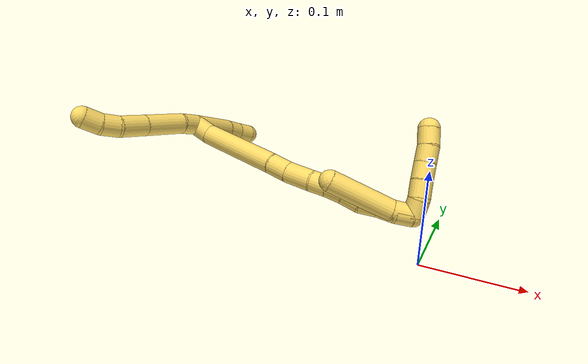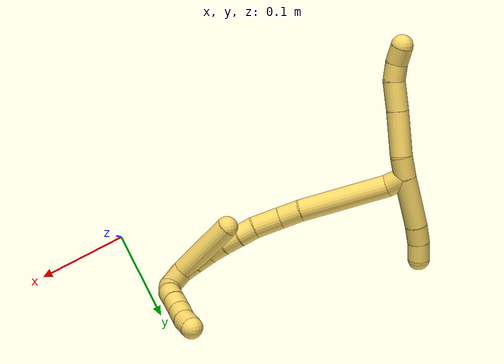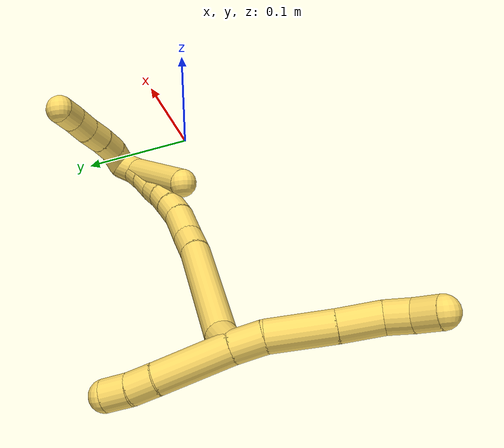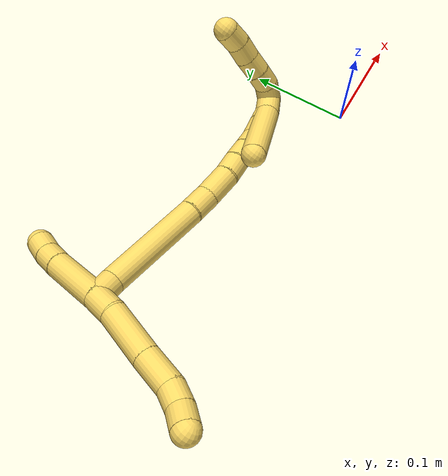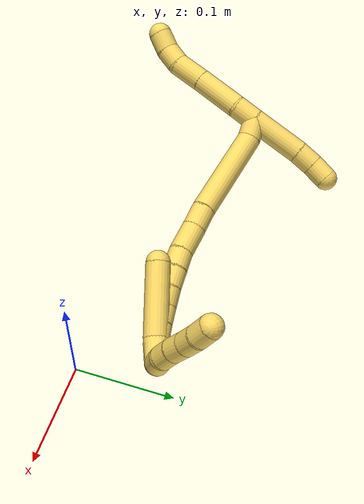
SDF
<sdf version="1.7">
 <world name="default">
  <model name="5">
   <static>0</static>
   <link name="5">
    <collision name="collision-cylinder-e_1_2_8">
     <pose>-0.012209 0.00033 -0.002598 -3.01516 -1.35946 2.98527</pose>
     <geometry><cylinder><radius>0.0125</radius><length>0.024974</length></cylinder></geometry>
     <surface>
      <friction><ode><mu>1.16</mu><mu2>1.16</mu2><slip1>0</slip1><slip2>0</slip2></ode></friction>
      <contact><ode><kp>1e+06</kp><kd>1</kd><max_vel>0</max_vel><min_depth>0.001</min_depth></ode></contact>
     </surface>
    </collision>
    <visual name="visual-cylinder-e_1_2_8">
     <pose>-0.012209 0.00033 -0.002598 -3.01516 -1.35946 2.98527</pose>
     <geometry><cylinder><radius>0.0125</radius><length>0.024974</length></cylinder></geometry>
     <material><ambient>1 0.858824 0.4 1</ambient></material>
    </visual>
    <collision name="collision-cylinder-e_2_8_9">
     <pose>-0.049559 0.002619 -0.006186 -2.03845 -1.48374 1.95918</pose>
     <geometry><cylinder><radius>0.0125</radius><length>0.050472</length></cylinder></geometry>
     <surface>
      <friction><ode><mu>1.16</mu><mu2>1.16</mu2><slip1>0</slip1><slip2>0</slip2></ode></friction>
      <contact><ode><kp>1e+06</kp><kd>1</kd><max_vel>0</max_vel><min_depth>0.001</min_depth></ode></contact>
     </surface>
    </collision>
    <visual name="visual-cylinder-e_2_8_9">
     <pose>-0.049559 0.002619 -0.006186 -2.03845 -1.48374 1.95918</pose>
     <geometry><cylinder><radius>0.0125</radius><length>0.050472</length></cylinder></geometry>
     <material><ambient>1 0.858824 0.4 1</ambient></material>
    </visual>
    <collision name="collision-cylinder-e_3_9_10">
     <pose>-0.091208 0.006046 -0.008442 -2.28245 -1.45384 2.19032</pose>
     <geometry><cylinder><radius>0.0125</radius><length>0.033244</length></cylinder></geometry>
     <surface>
      <friction><ode><mu>1.16</mu><mu2>1.16</mu2><slip1>0</slip1><slip2>0</slip2></ode></friction>
      <contact><ode><kp>1e+06</kp><kd>1</kd><max_vel>0</max_vel><min_depth>0.001</min_depth></ode></contact>
     </surface>
    </collision>
    <visual name="visual-cylinder-e_3_9_10">
     <pose>-0.091208 0.006046 -0.008442 -2.28245 -1.45384 2.19032</pose>
     <geometry><cylinder><radius>0.0125</radius><length>0.033244</length></cylinder></geometry>
     <material><ambient>1 0.858824 0.4 1</ambient></material>
    </visual>
    <collision name="collision-cylinder-e_4_10_11">
     <pose>-0.117881 0.005908 -0.00928 1.31024 -1.40856 -1.15666</pose>
     <geometry><cylinder><radius>0.0125</radius><length>0.020598</length></cylinder></geometry>
     <surface>
      <friction><ode><mu>1.16</mu><mu2>1.16</mu2><slip1>0</slip1><slip2>0</slip2></ode></friction>
      <contact><ode><kp>1e+06</kp><kd>1</kd><max_vel>0</max_vel><min_depth>0.001</min_depth></ode></contact>
     </surface>
    </collision>
    <visual name="visual-cylinder-e_4_10_11">
     <pose>-0.117881 0.005908 -0.00928 1.31024 -1.40856 -1.15666</pose>
     <geometry><cylinder><radius>0.0125</radius><length>0.020598</length></cylinder></geometry>
     <material><ambient>1 0.858824 0.4 1</ambient></material>
    </visual>
    <collision name="collision-cylinder-e_5_11_6">
     <pose>-0.137516 0.000113 -0.00883 1.5656 -1.15447 -1.14972</pose>
     <geometry><cylinder><radius>0.0125</radius><length>0.020711</length></cylinder></geometry>
     <surface>
      <friction><ode><mu>1.16</mu><mu2>1.16</mu2><slip1>0</slip1><slip2>0</slip2></ode></friction>
      <contact><ode><kp>1e+06</kp><kd>1</kd><max_vel>0</max_vel><min_depth>0.001</min_depth></ode></contact>
     </surface>
    </collision>
    <visual name="visual-cylinder-e_5_11_6">
     <pose>-0.137516 0.000113 -0.00883 1.5656 -1.15447 -1.14972</pose>
     <geometry><cylinder><radius>0.0125</radius><length>0.020711</length></cylinder></geometry>
     <material><ambient>1 0.858824 0.4 1</ambient></material>
    </visual>
    <collision name="collision-cylinder-e_1_2_12">
     <pose>0.028085 -0.000543 0.00813 0.066688 1.28842 0.050098</pose>
     <geometry><cylinder><radius>0.0125</radius><length>0.058486</length></cylinder></geometry>
     <surface>
      <friction><ode><mu>1.16</mu><mu2>1.16</mu2><slip1>0</slip1><slip2>0</slip2></ode></friction>
      <contact><ode><kp>1e+06</kp><kd>1</kd><max_vel>0</max_vel><min_depth>0.001</min_depth></ode></contact>
     </surface>
    </collision>
    <visual name="visual-cylinder-e_1_2_12">
     <pose>0.028085 -0.000543 0.00813 0.066688 1.28842 0.050098</pose>
     <geometry><cylinder><radius>0.0125</radius><length>0.058486</length></cylinder></geometry>
     <material><ambient>1 0.858824 0.4 1</ambient></material>
    </visual>
    <collision name="collision-cylinder-e_2_12_13">
     <pose>0.066275 -0.000352 0.018997 -0.261906 1.29739 -0.199047</pose>
     <geometry><cylinder><radius>0.0125</radius><length>0.02099</length></cylinder></geometry>
     <surface>
      <friction><ode><mu>1.16</mu><mu2>1.16</mu2><slip1>0</slip1><slip2>0</slip2></ode></friction>
      <contact><ode><kp>1e+06</kp><kd>1</kd><max_vel>0</max_vel><min_depth>0.001</min_depth></ode></contact>
     </surface>
    </collision>
    <visual name="visual-cylinder-e_2_12_13">
     <pose>0.066275 -0.000352 0.018997 -0.261906 1.29739 -0.199047</pose>
     <geometry><cylinder><radius>0.0125</radius><length>0.02099</length></cylinder></geometry>
     <material><ambient>1 0.858824 0.4 1</ambient></material>
    </visual>
    <collision name="collision-cylinder-e_3_13_5">
     <pose>0.086463 0.001657 0.023157 -0.730876 1.38353 -0.613832</pose>
     <geometry><cylinder><radius>0.0125</radius><length>0.020524</length></cylinder></geometry>
     <surface>
      <friction><ode><mu>1.16</mu><mu2>1.16</mu2><slip1>0</slip1><slip2>0</slip2></ode></friction>
      <contact><ode><kp>1e+06</kp><kd>1</kd><max_vel>0</max_vel><min_depth>0.001</min_depth></ode></contact>
     </surface>
    </collision>
    <visual name="visual-cylinder-e_3_13_5">
     <pose>0.086463 0.001657 0.023157 -0.730876 1.38353 -0.613832</pose>
     <geometry><cylinder><radius>0.0125</radius><length>0.020524</length></cylinder></geometry>
     <material><ambient>1 0.858824 0.4 1</ambient></material>
    </visual>
    <collision name="collision-cylinder-e_1_2_14">
     <pose>0.005206 0.008768 -0.004851 -2.07614 0.479161 -0.785568</pose>
     <geometry><cylinder><radius>0.0125</radius><length>0.022584</length></cylinder></geometry>
     <surface>
      <friction><ode><mu>1.16</mu><mu2>1.16</mu2><slip1>0</slip1><slip2>0</slip2></ode></friction>
      <contact><ode><kp>1e+06</kp><kd>1</kd><max_vel>0</max_vel><min_depth>0.001</min_depth></ode></contact>
     </surface>
    </collision>
    <visual name="visual-cylinder-e_1_2_14">
     <pose>0.005206 0.008768 -0.004851 -2.07614 0.479161 -0.785568</pose>
     <geometry><cylinder><radius>0.0125</radius><length>0.022584</length></cylinder></geometry>
     <material><ambient>1 0.858824 0.4 1</ambient></material>
    </visual>
    <collision name="collision-cylinder-e_2_14_15">
     <pose>0.024498 0.051206 -0.04473 -2.37596 0.282178 -0.678184</pose>
     <geometry><cylinder><radius>0.0125</radius><length>0.101175</length></cylinder></geometry>
     <surface>
      <friction><ode><mu>1.16</mu><mu2>1.16</mu2><slip1>0</slip1><slip2>0</slip2></ode></friction>
      <contact><ode><kp>1e+06</kp><kd>1</kd><max_vel>0</max_vel><min_depth>0.001</min_depth></ode></contact>
     </surface>
    </collision>
    <visual name="visual-cylinder-e_2_14_15">
     <pose>0.024498 0.051206 -0.04473 -2.37596 0.282178 -0.678184</pose>
     <geometry><cylinder><radius>0.0125</radius><length>0.101175</length></cylinder></geometry>
     <material><ambient>1 0.858824 0.4 1</ambient></material>
    </visual>
    <collision name="collision-cylinder-e_3_15_16">
     <pose>0.042943 0.093366 -0.087382 -2.30249 0.364907 -0.784448</pose>
     <geometry><cylinder><radius>0.0125</radius><length>0.024428</length></cylinder></geometry>
     <surface>
      <friction><ode><mu>1.16</mu><mu2>1.16</mu2><slip1>0</slip1><slip2>0</slip2></ode></friction>
      <contact><ode><kp>1e+06</kp><kd>1</kd><max_vel>0</max_vel><min_depth>0.001</min_depth></ode></contact>
     </surface>
    </collision>
    <visual name="visual-cylinder-e_3_15_16">
     <pose>0.042943 0.093366 -0.087382 -2.30249 0.364907 -0.784448</pose>
     <geometry><cylinder><radius>0.0125</radius><length>0.024428</length></cylinder></geometry>
     <material><ambient>1 0.858824 0.4 1</ambient></material>
    </visual>
    <collision name="collision-cylinder-e_4_16_17">
     <pose>0.052709 0.111455 -0.106134 -2.42985 0.35258 -0.893833</pose>
     <geometry><cylinder><radius>0.0125</radius><length>0.03132</length></cylinder></geometry>
     <surface>
      <friction><ode><mu>1.16</mu><mu2>1.16</mu2><slip1>0</slip1><slip2>0</slip2></ode></friction>
      <contact><ode><kp>1e+06</kp><kd>1</kd><max_vel>0</max_vel><min_depth>0.001</min_depth></ode></contact>
     </surface>
    </collision>
    <visual name="visual-cylinder-e_4_16_17">
     <pose>0.052709 0.111455 -0.106134 -2.42985 0.35258 -0.893833</pose>
     <geometry><cylinder><radius>0.0125</radius><length>0.03132</length></cylinder></geometry>
     <material><ambient>1 0.858824 0.4 1</ambient></material>
    </visual>
    <collision name="collision-cylinder-e_5_17_18">
     <pose>0.062964 0.126951 -0.123743 -2.4033 0.505315 -1.17692</pose>
     <geometry><cylinder><radius>0.0125</radius><length>0.020027</length></cylinder></geometry>
     <surface>
      <friction><ode><mu>1.16</mu><mu2>1.16</mu2><slip1>0</slip1><slip2>0</slip2></ode></friction>
      <contact><ode><kp>1e+06</kp><kd>1</kd><max_vel>0</max_vel><min_depth>0.001</min_depth></ode></contact>
     </surface>
    </collision>
    <visual name="visual-cylinder-e_5_17_18">
     <pose>0.062964 0.126951 -0.123743 -2.4033 0.505315 -1.17692</pose>
     <geometry><cylinder><radius>0.0125</radius><length>0.020027</length></cylinder></geometry>
     <material><ambient>1 0.858824 0.4 1</ambient></material>
    </visual>
    <collision name="collision-cylinder-e_6_18_19">
     <pose>0.072625 0.139446 -0.136164 -2.30382 0.496806 -1.03565</pose>
     <geometry><cylinder><radius>0.0125</radius><length>0.020199</length></cylinder></geometry>
     <surface>
      <friction><ode><mu>1.16</mu><mu2>1.16</mu2><slip1>0</slip1><slip2>0</slip2></ode></friction>
      <contact><ode><kp>1e+06</kp><kd>1</kd><max_vel>0</max_vel><min_depth>0.001</min_depth></ode></contact>
     </surface>
    </collision>
    <visual name="visual-cylinder-e_6_18_19">
     <pose>0.072625 0.139446 -0.136164 -2.30382 0.496806 -1.03565</pose>
     <geometry><cylinder><radius>0.0125</radius><length>0.020199</length></cylinder></geometry>
     <material><ambient>1 0.858824 0.4 1</ambient></material>
    </visual>
    <collision name="collision-cylinder-e_7_19_20">
     <pose>0.082782 0.153123 -0.146865 -2.16273 0.559563 -0.989339</pose>
     <geometry><cylinder><radius>0.0125</radius><length>0.020131</length></cylinder></geometry>
     <surface>
      <friction><ode><mu>1.16</mu><mu2>1.16</mu2><slip1>0</slip1><slip2>0</slip2></ode></friction>
      <contact><ode><kp>1e+06</kp><kd>1</kd><max_vel>0</max_vel><min_depth>0.001</min_depth></ode></contact>
     </surface>
    </collision>
    <visual name="visual-cylinder-e_7_19_20">
     <pose>0.082782 0.153123 -0.146865 -2.16273 0.559563 -0.989339</pose>
     <geometry><cylinder><radius>0.0125</radius><length>0.020131</length></cylinder></geometry>
     <material><ambient>1 0.858824 0.4 1</ambient></material>
    </visual>
    <collision name="collision-cylinder-e_8_20_21">
     <pose>0.093705 0.165149 -0.158378 -2.50946 0.587986 -1.49378</pose>
     <geometry><cylinder><radius>0.0125</radius><length>0.020121</length></cylinder></geometry>
     <surface>
      <friction><ode><mu>1.16</mu><mu2>1.16</mu2><slip1>0</slip1><slip2>0</slip2></ode></friction>
      <contact><ode><kp>1e+06</kp><kd>1</kd><max_vel>0</max_vel><min_depth>0.001</min_depth></ode></contact>
     </surface>
    </collision>
    <visual name="visual-cylinder-e_8_20_21">
     <pose>0.093705 0.165149 -0.158378 -2.50946 0.587986 -1.49378</pose>
     <geometry><cylinder><radius>0.0125</radius><length>0.020121</length></cylinder></geometry>
     <material><ambient>1 0.858824 0.4 1</ambient></material>
    </visual>
    <collision name="collision-cylinder-e_9_21_22">
     <pose>0.105148 0.175912 -0.170781 -2.3416 0.625918 -1.30654</pose>
     <geometry><cylinder><radius>0.0125</radius><length>0.020013</length></cylinder></geometry>
     <surface>
      <friction><ode><mu>1.16</mu><mu2>1.16</mu2><slip1>0</slip1><slip2>0</slip2></ode></friction>
      <contact><ode><kp>1e+06</kp><kd>1</kd><max_vel>0</max_vel><min_depth>0.001</min_depth></ode></contact>
     </surface>
    </collision>
    <visual name="visual-cylinder-e_9_21_22">
     <pose>0.105148 0.175912 -0.170781 -2.3416 0.625918 -1.30654</pose>
     <geometry><cylinder><radius>0.0125</radius><length>0.020013</length></cylinder></geometry>
     <material><ambient>1 0.858824 0.4 1</ambient></material>
    </visual>
    <collision name="collision-cylinder-e_10_22_1">
     <pose>0.118716 0.185979 -0.181183 -2.41194 0.879673 -1.77805</pose>
     <geometry><cylinder><radius>0.0125</radius><length>0.020002</length></cylinder></geometry>
     <surface>
      <friction><ode><mu>1.16</mu><mu2>1.16</mu2><slip1>0</slip1><slip2>0</slip2></ode></friction>
      <contact><ode><kp>1e+06</kp><kd>1</kd><max_vel>0</max_vel><min_depth>0.001</min_depth></ode></contact>
     </surface>
    </collision>
    <visual name="visual-cylinder-e_10_22_1">
     <pose>0.118716 0.185979 -0.181183 -2.41194 0.879673 -1.77805</pose>
     <geometry><cylinder><radius>0.0125</radius><length>0.020002</length></cylinder></geometry>
     <material><ambient>1 0.858824 0.4 1</ambient></material>
    </visual>
    <collision name="collision-cylinder-e_1_1_23">
     <pose>0.127972 0.182524 -0.192119 2.24716 0.155607 0.322272</pose>
     <geometry><cylinder><radius>0.0125</radius><length>0.02</length></cylinder></geometry>
     <surface>
      <friction><ode><mu>1.16</mu><mu2>1.16</mu2><slip1>0</slip1><slip2>0</slip2></ode></friction>
      <contact><ode><kp>1e+06</kp><kd>1</kd><max_vel>0</max_vel><min_depth>0.001</min_depth></ode></contact>
     </surface>
    </collision>
    <visual name="visual-cylinder-e_1_1_23">
     <pose>0.127972 0.182524 -0.192119 2.24716 0.155607 0.322272</pose>
     <geometry><cylinder><radius>0.0125</radius><length>0.02</length></cylinder></geometry>
     <material><ambient>1 0.858824 0.4 1</ambient></material>
    </visual>
    <collision name="collision-cylinder-e_2_23_24">
     <pose>0.132158 0.165804 -0.201734 1.93451 0.266779 0.384504</pose>
     <geometry><cylinder><radius>0.0125</radius><length>0.02</length></cylinder></geometry>
     <surface>
      <friction><ode><mu>1.16</mu><mu2>1.16</mu2><slip1>0</slip1><slip2>0</slip2></ode></friction>
      <contact><ode><kp>1e+06</kp><kd>1</kd><max_vel>0</max_vel><min_depth>0.001</min_depth></ode></contact>
     </surface>
    </collision>
    <visual name="visual-cylinder-e_2_23_24">
     <pose>0.132158 0.165804 -0.201734 1.93451 0.266779 0.384504</pose>
     <geometry><cylinder><radius>0.0125</radius><length>0.02</length></cylinder></geometry>
     <material><ambient>1 0.858824 0.4 1</ambient></material>
    </visual>
    <collision name="collision-cylinder-e_3_24_25">
     <pose>0.138209 0.147953 -0.208369 1.9186 0.34852 0.491993</pose>
     <geometry><cylinder><radius>0.0125</radius><length>0.02</length></cylinder></geometry>
     <surface>
      <friction><ode><mu>1.16</mu><mu2>1.16</mu2><slip1>0</slip1><slip2>0</slip2></ode></friction>
      <contact><ode><kp>1e+06</kp><kd>1</kd><max_vel>0</max_vel><min_depth>0.001</min_depth></ode></contact>
     </surface>
    </collision>
    <visual name="visual-cylinder-e_3_24_25">
     <pose>0.138209 0.147953 -0.208369 1.9186 0.34852 0.491993</pose>
     <geometry><cylinder><radius>0.0125</radius><length>0.02</length></cylinder></geometry>
     <material><ambient>1 0.858824 0.4 1</ambient></material>
    </visual>
    <collision name="collision-cylinder-e_4_25_26">
     <pose>0.144598 0.130314 -0.21527 1.96842 0.301915 0.449997</pose>
     <geometry><cylinder><radius>0.0125</radius><length>0.02</length></cylinder></geometry>
     <surface>
      <friction><ode><mu>1.16</mu><mu2>1.16</mu2><slip1>0</slip1><slip2>0</slip2></ode></friction>
      <contact><ode><kp>1e+06</kp><kd>1</kd><max_vel>0</max_vel><min_depth>0.001</min_depth></ode></contact>
     </surface>
    </collision>
    <visual name="visual-cylinder-e_4_25_26">
     <pose>0.144598 0.130314 -0.21527 1.96842 0.301915 0.449997</pose>
     <geometry><cylinder><radius>0.0125</radius><length>0.02</length></cylinder></geometry>
     <material><ambient>1 0.858824 0.4 1</ambient></material>
    </visual>
    <collision name="collision-cylinder-e_5_26_4">
     <pose>0.149875 0.112057 -0.221271 1.80981 0.232453 0.295076</pose>
     <geometry><cylinder><radius>0.0125</radius><length>0.02</length></cylinder></geometry>
     <surface>
      <friction><ode><mu>1.16</mu><mu2>1.16</mu2><slip1>0</slip1><slip2>0</slip2></ode></friction>
      <contact><ode><kp>1e+06</kp><kd>1</kd><max_vel>0</max_vel><min_depth>0.001</min_depth></ode></contact>
     </surface>
    </collision>
    <visual name="visual-cylinder-e_5_26_4">
     <pose>0.149875 0.112057 -0.221271 1.80981 0.232453 0.295076</pose>
     <geometry><cylinder><radius>0.0125</radius><length>0.02</length></cylinder></geometry>
     <material><ambient>1 0.858824 0.4 1</ambient></material>
    </visual>
    <collision name="collision-cylinder-e_1_1_27">
     <pose>0.116914 0.184455 -0.180297 0.797234 -0.867054 -0.38508</pose>
     <geometry><cylinder><radius>0.0125</radius><length>0.024942</length></cylinder></geometry>
     <surface>
      <friction><ode><mu>1.16</mu><mu2>1.16</mu2><slip1>0</slip1><slip2>0</slip2></ode></friction>
      <contact><ode><kp>1e+06</kp><kd>1</kd><max_vel>0</max_vel><min_depth>0.001</min_depth></ode></contact>
     </surface>
    </collision>
    <visual name="visual-cylinder-e_1_1_27">
     <pose>0.116914 0.184455 -0.180297 0.797234 -0.867054 -0.38508</pose>
     <geometry><cylinder><radius>0.0125</radius><length>0.024942</length></cylinder></geometry>
     <material><ambient>1 0.858824 0.4 1</ambient></material>
    </visual>
    <collision name="collision-cylinder-e_2_27_3">
     <pose>0.081232 0.155191 -0.161561 1.06217 -0.771815 -0.468512</pose>
     <geometry><cylinder><radius>0.0125</radius><length>0.075058</length></cylinder></geometry>
     <surface>
      <friction><ode><mu>1.16</mu><mu2>1.16</mu2><slip1>0</slip1><slip2>0</slip2></ode></friction>
      <contact><ode><kp>1e+06</kp><kd>1</kd><max_vel>0</max_vel><min_depth>0.001</min_depth></ode></contact>
     </surface>
    </collision>
    <visual name="visual-cylinder-e_2_27_3">
     <pose>0.081232 0.155191 -0.161561 1.06217 -0.771815 -0.468512</pose>
     <geometry><cylinder><radius>0.0125</radius><length>0.075058</length></cylinder></geometry>
     <material><ambient>1 0.858824 0.4 1</ambient></material>
    </visual>
    <collision name="collision-sphere-3">
     <pose>0.055057 0.131701 -0.148464 0 -0 0</pose>
     <geometry><sphere><radius>0.0125</radius></sphere></geometry>
     <surface>
      <friction><ode><mu>1.16</mu><mu2>1.16</mu2><slip1>0</slip1><slip2>0</slip2></ode></friction>
      <contact><ode><kp>1e+06</kp><kd>1</kd><max_vel>0</max_vel><min_depth>0.001</min_depth></ode></contact>
     </surface>
    </collision>
    <visual name="visual-sphere-3">
     <pose>0.055057 0.131701 -0.148464 0 -0 0</pose>
     <geometry><sphere><radius>0.0125</radius></sphere></geometry>
     <material><ambient>1 0.858824 0.4 1</ambient></material>
    </visual>
    <collision name="collision-sphere-27">
     <pose>0.107406 0.178682 -0.174658 0 -0 0</pose>
     <geometry><sphere><radius>0.0125</radius></sphere></geometry>
     <surface>
      <friction><ode><mu>1.16</mu><mu2>1.16</mu2><slip1>0</slip1><slip2>0</slip2></ode></friction>
      <contact><ode><kp>1e+06</kp><kd>1</kd><max_vel>0</max_vel><min_depth>0.001</min_depth></ode></contact>
     </surface>
    </collision>
    <visual name="visual-sphere-27">
     <pose>0.107406 0.178682 -0.174658 0 -0 0</pose>
     <geometry><sphere><radius>0.0125</radius></sphere></geometry>
     <material><ambient>1 0.858824 0.4 1</ambient></material>
    </visual>
    <collision name="collision-sphere-4">
     <pose>0.152179 0.102603 -0.223575 0 -0 0</pose>
     <geometry><sphere><radius>0.0125</radius></sphere></geometry>
     <surface>
      <friction><ode><mu>1.16</mu><mu2>1.16</mu2><slip1>0</slip1><slip2>0</slip2></ode></friction>
      <contact><ode><kp>1e+06</kp><kd>1</kd><max_vel>0</max_vel><min_depth>0.001</min_depth></ode></contact>
     </surface>
    </collision>
    <visual name="visual-sphere-4">
     <pose>0.152179 0.102603 -0.223575 0 -0 0</pose>
     <geometry><sphere><radius>0.0125</radius></sphere></geometry>
     <material><ambient>1 0.858824 0.4 1</ambient></material>
    </visual>
    <collision name="collision-sphere-26">
     <pose>0.147571 0.121511 -0.218967 0 -0 0</pose>
     <geometry><sphere><radius>0.0125</radius></sphere></geometry>
     <surface>
      <friction><ode><mu>1.16</mu><mu2>1.16</mu2><slip1>0</slip1><slip2>0</slip2></ode></friction>
      <contact><ode><kp>1e+06</kp><kd>1</kd><max_vel>0</max_vel><min_depth>0.001</min_depth></ode></contact>
     </surface>
    </collision>
    <visual name="visual-sphere-26">
     <pose>0.147571 0.121511 -0.218967 0 -0 0</pose>
     <geometry><sphere><radius>0.0125</radius></sphere></geometry>
     <material><ambient>1 0.858824 0.4 1</ambient></material>
    </visual>
    <collision name="collision-sphere-25">
     <pose>0.141624 0.139117 -0.211573 0 -0 0</pose>
     <geometry><sphere><radius>0.0125</radius></sphere></geometry>
     <surface>
      <friction><ode><mu>1.16</mu><mu2>1.16</mu2><slip1>0</slip1><slip2>0</slip2></ode></friction>
      <contact><ode><kp>1e+06</kp><kd>1</kd><max_vel>0</max_vel><min_depth>0.001</min_depth></ode></contact>
     </surface>
    </collision>
    <visual name="visual-sphere-25">
     <pose>0.141624 0.139117 -0.211573 0 -0 0</pose>
     <geometry><sphere><radius>0.0125</radius></sphere></geometry>
     <material><ambient>1 0.858824 0.4 1</ambient></material>
    </visual>
    <collision name="collision-sphere-24">
     <pose>0.134794 0.156789 -0.205166 0 -0 0</pose>
     <geometry><sphere><radius>0.0125</radius></sphere></geometry>
     <surface>
      <friction><ode><mu>1.16</mu><mu2>1.16</mu2><slip1>0</slip1><slip2>0</slip2></ode></friction>
      <contact><ode><kp>1e+06</kp><kd>1</kd><max_vel>0</max_vel><min_depth>0.001</min_depth></ode></contact>
     </surface>
    </collision>
    <visual name="visual-sphere-24">
     <pose>0.134794 0.156789 -0.205166 0 -0 0</pose>
     <geometry><sphere><radius>0.0125</radius></sphere></geometry>
     <material><ambient>1 0.858824 0.4 1</ambient></material>
    </visual>
    <collision name="collision-sphere-23">
     <pose>0.129522 0.17482 -0.198303 0 -0 0</pose>
     <geometry><sphere><radius>0.0125</radius></sphere></geometry>
     <surface>
      <friction><ode><mu>1.16</mu><mu2>1.16</mu2><slip1>0</slip1><slip2>0</slip2></ode></friction>
      <contact><ode><kp>1e+06</kp><kd>1</kd><max_vel>0</max_vel><min_depth>0.001</min_depth></ode></contact>
     </surface>
    </collision>
    <visual name="visual-sphere-23">
     <pose>0.129522 0.17482 -0.198303 0 -0 0</pose>
     <geometry><sphere><radius>0.0125</radius></sphere></geometry>
     <material><ambient>1 0.858824 0.4 1</ambient></material>
    </visual>
    <collision name="collision-sphere-1">
     <pose>0.126422 0.190228 -0.185935 0 -0 0</pose>
     <geometry><sphere><radius>0.0125</radius></sphere></geometry>
     <surface>
      <friction><ode><mu>1.16</mu><mu2>1.16</mu2><slip1>0</slip1><slip2>0</slip2></ode></friction>
      <contact><ode><kp>1e+06</kp><kd>1</kd><max_vel>0</max_vel><min_depth>0.001</min_depth></ode></contact>
     </surface>
    </collision>
    <visual name="visual-sphere-1">
     <pose>0.126422 0.190228 -0.185935 0 -0 0</pose>
     <geometry><sphere><radius>0.0125</radius></sphere></geometry>
     <material><ambient>1 0.858824 0.4 1</ambient></material>
    </visual>
    <collision name="collision-sphere-22">
     <pose>0.11101 0.181729 -0.176431 0 -0 0</pose>
     <geometry><sphere><radius>0.0125</radius></sphere></geometry>
     <surface>
      <friction><ode><mu>1.16</mu><mu2>1.16</mu2><slip1>0</slip1><slip2>0</slip2></ode></friction>
      <contact><ode><kp>1e+06</kp><kd>1</kd><max_vel>0</max_vel><min_depth>0.001</min_depth></ode></contact>
     </surface>
    </collision>
    <visual name="visual-sphere-22">
     <pose>0.11101 0.181729 -0.176431 0 -0 0</pose>
     <geometry><sphere><radius>0.0125</radius></sphere></geometry>
     <material><ambient>1 0.858824 0.4 1</ambient></material>
    </visual>
    <collision name="collision-sphere-21">
     <pose>0.099286 0.170095 -0.165131 0 -0 0</pose>
     <geometry><sphere><radius>0.0125</radius></sphere></geometry>
     <surface>
      <friction><ode><mu>1.16</mu><mu2>1.16</mu2><slip1>0</slip1><slip2>0</slip2></ode></friction>
      <contact><ode><kp>1e+06</kp><kd>1</kd><max_vel>0</max_vel><min_depth>0.001</min_depth></ode></contact>
     </surface>
    </collision>
    <visual name="visual-sphere-21">
     <pose>0.099286 0.170095 -0.165131 0 -0 0</pose>
     <geometry><sphere><radius>0.0125</radius></sphere></geometry>
     <material><ambient>1 0.858824 0.4 1</ambient></material>
    </visual>
    <collision name="collision-sphere-6">
     <pose>-0.146987 -0.004075 -0.008808 0 -0 0</pose>
     <geometry><sphere><radius>0.0125</radius></sphere></geometry>
     <surface>
      <friction><ode><mu>1.16</mu><mu2>1.16</mu2><slip1>0</slip1><slip2>0</slip2></ode></friction>
      <contact><ode><kp>1e+06</kp><kd>1</kd><max_vel>0</max_vel><min_depth>0.001</min_depth></ode></contact>
     </surface>
    </collision>
    <visual name="visual-sphere-6">
     <pose>-0.146987 -0.004075 -0.008808 0 -0 0</pose>
     <geometry><sphere><radius>0.0125</radius></sphere></geometry>
     <material><ambient>1 0.858824 0.4 1</ambient></material>
    </visual>
    <collision name="collision-sphere-11">
     <pose>-0.128044 0.004301 -0.008851 0 -0 0</pose>
     <geometry><sphere><radius>0.0125</radius></sphere></geometry>
     <surface>
      <friction><ode><mu>1.16</mu><mu2>1.16</mu2><slip1>0</slip1><slip2>0</slip2></ode></friction>
      <contact><ode><kp>1e+06</kp><kd>1</kd><max_vel>0</max_vel><min_depth>0.001</min_depth></ode></contact>
     </surface>
    </collision>
    <visual name="visual-sphere-11">
     <pose>-0.128044 0.004301 -0.008851 0 -0 0</pose>
     <geometry><sphere><radius>0.0125</radius></sphere></geometry>
     <material><ambient>1 0.858824 0.4 1</ambient></material>
    </visual>
    <collision name="collision-sphere-10">
     <pose>-0.107717 0.007515 -0.009709 0 -0 0</pose>
     <geometry><sphere><radius>0.0125</radius></sphere></geometry>
     <surface>
      <friction><ode><mu>1.16</mu><mu2>1.16</mu2><slip1>0</slip1><slip2>0</slip2></ode></friction>
      <contact><ode><kp>1e+06</kp><kd>1</kd><max_vel>0</max_vel><min_depth>0.001</min_depth></ode></contact>
     </surface>
    </collision>
    <visual name="visual-sphere-10">
     <pose>-0.107717 0.007515 -0.009709 0 -0 0</pose>
     <geometry><sphere><radius>0.0125</radius></sphere></geometry>
     <material><ambient>1 0.858824 0.4 1</ambient></material>
    </visual>
    <collision name="collision-sphere-9">
     <pose>-0.0747 0.004578 -0.007175 0 -0 0</pose>
     <geometry><sphere><radius>0.0125</radius></sphere></geometry>
     <surface>
      <friction><ode><mu>1.16</mu><mu2>1.16</mu2><slip1>0</slip1><slip2>0</slip2></ode></friction>
      <contact><ode><kp>1e+06</kp><kd>1</kd><max_vel>0</max_vel><min_depth>0.001</min_depth></ode></contact>
     </surface>
    </collision>
    <visual name="visual-sphere-9">
     <pose>-0.0747 0.004578 -0.007175 0 -0 0</pose>
     <geometry><sphere><radius>0.0125</radius></sphere></geometry>
     <material><ambient>1 0.858824 0.4 1</ambient></material>
    </visual>
    <collision name="collision-sphere-2">
     <geometry><sphere><radius>0.0125</radius></sphere></geometry>
     <surface>
      <friction><ode><mu>1.16</mu><mu2>1.16</mu2><slip1>0</slip1><slip2>0</slip2></ode></friction>
      <contact><ode><kp>1e+06</kp><kd>1</kd><max_vel>0</max_vel><min_depth>0.001</min_depth></ode></contact>
     </surface>
    </collision>
    <visual name="visual-sphere-2">
     <geometry><sphere><radius>0.0125</radius></sphere></geometry>
     <material><ambient>1 0.858824 0.4 1</ambient></material>
    </visual>
    <collision name="collision-sphere-19">
     <pose>0.077439 0.146044 -0.142105 0 -0 0</pose>
     <geometry><sphere><radius>0.0125</radius></sphere></geometry>
     <surface>
      <friction><ode><mu>1.16</mu><mu2>1.16</mu2><slip1>0</slip1><slip2>0</slip2></ode></friction>
      <contact><ode><kp>1e+06</kp><kd>1</kd><max_vel>0</max_vel><min_depth>0.001</min_depth></ode></contact>
     </surface>
    </collision>
    <visual name="visual-sphere-19">
     <pose>0.077439 0.146044 -0.142105 0 -0 0</pose>
     <geometry><sphere><radius>0.0125</radius></sphere></geometry>
     <material><ambient>1 0.858824 0.4 1</ambient></material>
    </visual>
    <collision name="collision-sphere-8">
     <pose>-0.024419 0.000661 -0.005197 0 -0 0</pose>
     <geometry><sphere><radius>0.0125</radius></sphere></geometry>
     <surface>
      <friction><ode><mu>1.16</mu><mu2>1.16</mu2><slip1>0</slip1><slip2>0</slip2></ode></friction>
      <contact><ode><kp>1e+06</kp><kd>1</kd><max_vel>0</max_vel><min_depth>0.001</min_depth></ode></contact>
     </surface>
    </collision>
    <visual name="visual-sphere-8">
     <pose>-0.024419 0.000661 -0.005197 0 -0 0</pose>
     <geometry><sphere><radius>0.0125</radius></sphere></geometry>
     <material><ambient>1 0.858824 0.4 1</ambient></material>
    </visual>
    <collision name="collision-sphere-12">
     <pose>0.056169 -0.001086 0.01626 0 -0 0</pose>
     <geometry><sphere><radius>0.0125</radius></sphere></geometry>
     <surface>
      <friction><ode><mu>1.16</mu><mu2>1.16</mu2><slip1>0</slip1><slip2>0</slip2></ode></friction>
      <contact><ode><kp>1e+06</kp><kd>1</kd><max_vel>0</max_vel><min_depth>0.001</min_depth></ode></contact>
     </surface>
    </collision>
    <visual name="visual-sphere-12">
     <pose>0.056169 -0.001086 0.01626 0 -0 0</pose>
     <geometry><sphere><radius>0.0125</radius></sphere></geometry>
     <material><ambient>1 0.858824 0.4 1</ambient></material>
    </visual>
    <collision name="collision-sphere-13">
     <pose>0.07638 0.000381 0.021734 0 -0 0</pose>
     <geometry><sphere><radius>0.0125</radius></sphere></geometry>
     <surface>
      <friction><ode><mu>1.16</mu><mu2>1.16</mu2><slip1>0</slip1><slip2>0</slip2></ode></friction>
      <contact><ode><kp>1e+06</kp><kd>1</kd><max_vel>0</max_vel><min_depth>0.001</min_depth></ode></contact>
     </surface>
    </collision>
    <visual name="visual-sphere-13">
     <pose>0.07638 0.000381 0.021734 0 -0 0</pose>
     <geometry><sphere><radius>0.0125</radius></sphere></geometry>
     <material><ambient>1 0.858824 0.4 1</ambient></material>
    </visual>
    <collision name="collision-sphere-5">
     <pose>0.096545 0.002932 0.024579 0 -0 0</pose>
     <geometry><sphere><radius>0.0125</radius></sphere></geometry>
     <surface>
      <friction><ode><mu>1.16</mu><mu2>1.16</mu2><slip1>0</slip1><slip2>0</slip2></ode></friction>
      <contact><ode><kp>1e+06</kp><kd>1</kd><max_vel>0</max_vel><min_depth>0.001</min_depth></ode></contact>
     </surface>
    </collision>
    <visual name="visual-sphere-5">
     <pose>0.096545 0.002932 0.024579 0 -0 0</pose>
     <geometry><sphere><radius>0.0125</radius></sphere></geometry>
     <material><ambient>1 0.858824 0.4 1</ambient></material>
    </visual>
    <collision name="collision-sphere-14">
     <pose>0.010412 0.017536 -0.009702 0 -0 0</pose>
     <geometry><sphere><radius>0.0125</radius></sphere></geometry>
     <surface>
      <friction><ode><mu>1.16</mu><mu2>1.16</mu2><slip1>0</slip1><slip2>0</slip2></ode></friction>
      <contact><ode><kp>1e+06</kp><kd>1</kd><max_vel>0</max_vel><min_depth>0.001</min_depth></ode></contact>
     </surface>
    </collision>
    <visual name="visual-sphere-14">
     <pose>0.010412 0.017536 -0.009702 0 -0 0</pose>
     <geometry><sphere><radius>0.0125</radius></sphere></geometry>
     <material><ambient>1 0.858824 0.4 1</ambient></material>
    </visual>
    <collision name="collision-sphere-15">
     <pose>0.038584 0.084877 -0.079759 0 -0 0</pose>
     <geometry><sphere><radius>0.0125</radius></sphere></geometry>
     <surface>
      <friction><ode><mu>1.16</mu><mu2>1.16</mu2><slip1>0</slip1><slip2>0</slip2></ode></friction>
      <contact><ode><kp>1e+06</kp><kd>1</kd><max_vel>0</max_vel><min_depth>0.001</min_depth></ode></contact>
     </surface>
    </collision>
    <visual name="visual-sphere-15">
     <pose>0.038584 0.084877 -0.079759 0 -0 0</pose>
     <geometry><sphere><radius>0.0125</radius></sphere></geometry>
     <material><ambient>1 0.858824 0.4 1</ambient></material>
    </visual>
    <collision name="collision-sphere-16">
     <pose>0.047301 0.101855 -0.095005 0 -0 0</pose>
     <geometry><sphere><radius>0.0125</radius></sphere></geometry>
     <surface>
      <friction><ode><mu>1.16</mu><mu2>1.16</mu2><slip1>0</slip1><slip2>0</slip2></ode></friction>
      <contact><ode><kp>1e+06</kp><kd>1</kd><max_vel>0</max_vel><min_depth>0.001</min_depth></ode></contact>
     </surface>
    </collision>
    <visual name="visual-sphere-16">
     <pose>0.047301 0.101855 -0.095005 0 -0 0</pose>
     <geometry><sphere><radius>0.0125</radius></sphere></geometry>
     <material><ambient>1 0.858824 0.4 1</ambient></material>
    </visual>
    <collision name="collision-sphere-17">
     <pose>0.058117 0.121054 -0.117262 0 -0 0</pose>
     <geometry><sphere><radius>0.0125</radius></sphere></geometry>
     <surface>
      <friction><ode><mu>1.16</mu><mu2>1.16</mu2><slip1>0</slip1><slip2>0</slip2></ode></friction>
      <contact><ode><kp>1e+06</kp><kd>1</kd><max_vel>0</max_vel><min_depth>0.001</min_depth></ode></contact>
     </surface>
    </collision>
    <visual name="visual-sphere-17">
     <pose>0.058117 0.121054 -0.117262 0 -0 0</pose>
     <geometry><sphere><radius>0.0125</radius></sphere></geometry>
     <material><ambient>1 0.858824 0.4 1</ambient></material>
    </visual>
    <collision name="collision-sphere-18">
     <pose>0.067812 0.132848 -0.130223 0 -0 0</pose>
     <geometry><sphere><radius>0.0125</radius></sphere></geometry>
     <surface>
      <friction><ode><mu>1.16</mu><mu2>1.16</mu2><slip1>0</slip1><slip2>0</slip2></ode></friction>
      <contact><ode><kp>1e+06</kp><kd>1</kd><max_vel>0</max_vel><min_depth>0.001</min_depth></ode></contact>
     </surface>
    </collision>
    <visual name="visual-sphere-18">
     <pose>0.067812 0.132848 -0.130223 0 -0 0</pose>
     <geometry><sphere><radius>0.0125</radius></sphere></geometry>
     <material><ambient>1 0.858824 0.4 1</ambient></material>
    </visual>
    <collision name="collision-sphere-20">
     <pose>0.088125 0.160202 -0.151625 0 -0 0</pose>
     <geometry><sphere><radius>0.0125</radius></sphere></geometry>
     <surface>
      <friction><ode><mu>1.16</mu><mu2>1.16</mu2><slip1>0</slip1><slip2>0</slip2></ode></friction>
      <contact><ode><kp>1e+06</kp><kd>1</kd><max_vel>0</max_vel><min_depth>0.001</min_depth></ode></contact>
     </surface>
    </collision>
    <visual name="visual-sphere-20">
     <pose>0.088125 0.160202 -0.151625 0 -0 0</pose>
     <geometry><sphere><radius>0.0125</radius></sphere></geometry>
     <material><ambient>1 0.858824 0.4 1</ambient></material>
    </visual>
    <inertial>
     <pose>0.04349 0.082184 -0.087451 0 -0 0</pose>
     <mass>0.75</mass>
     <inertia>
      <ixx>3.8e-05</ixx>
      <ixy>0</ixy>
      <ixz>0</ixz>
      <iyy>-4.1e-05</iyy>
      <iyz>0</iyz>
      <izz>-5.9e-05</izz>
     </inertia>
    </inertial>
   </link>
   <pose>-0.31311 0.087135 0.069154 -2.25196 0.220436 1.11269</pose>
  </model>
 </world>
</sdf>
